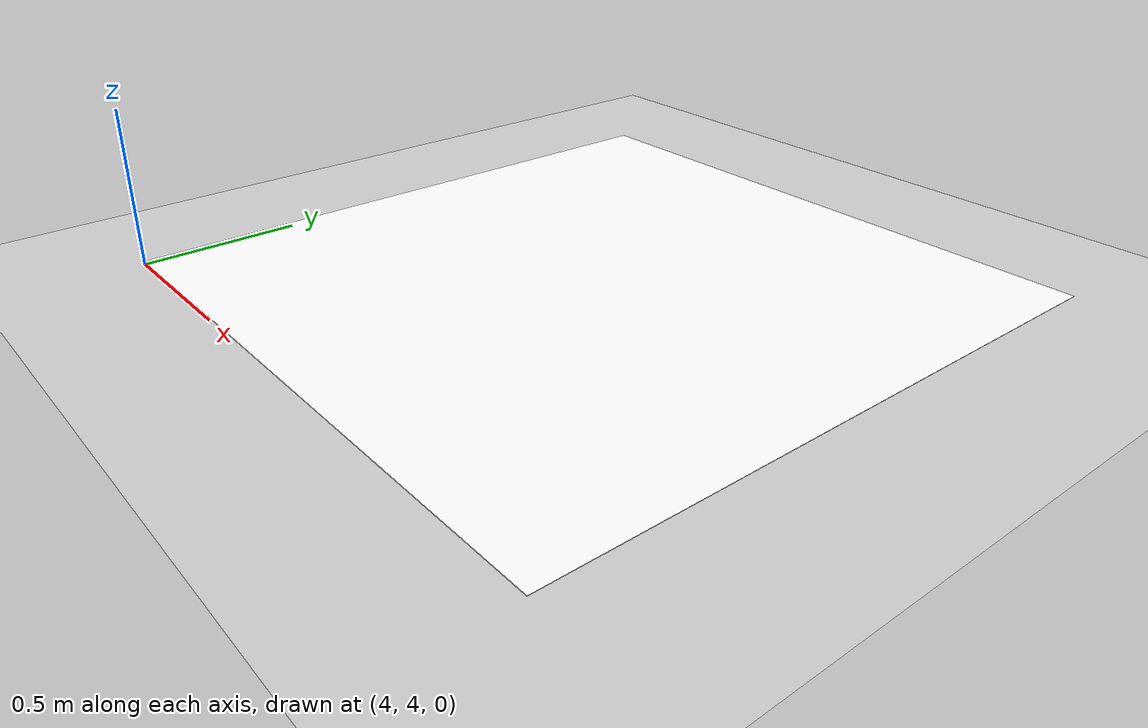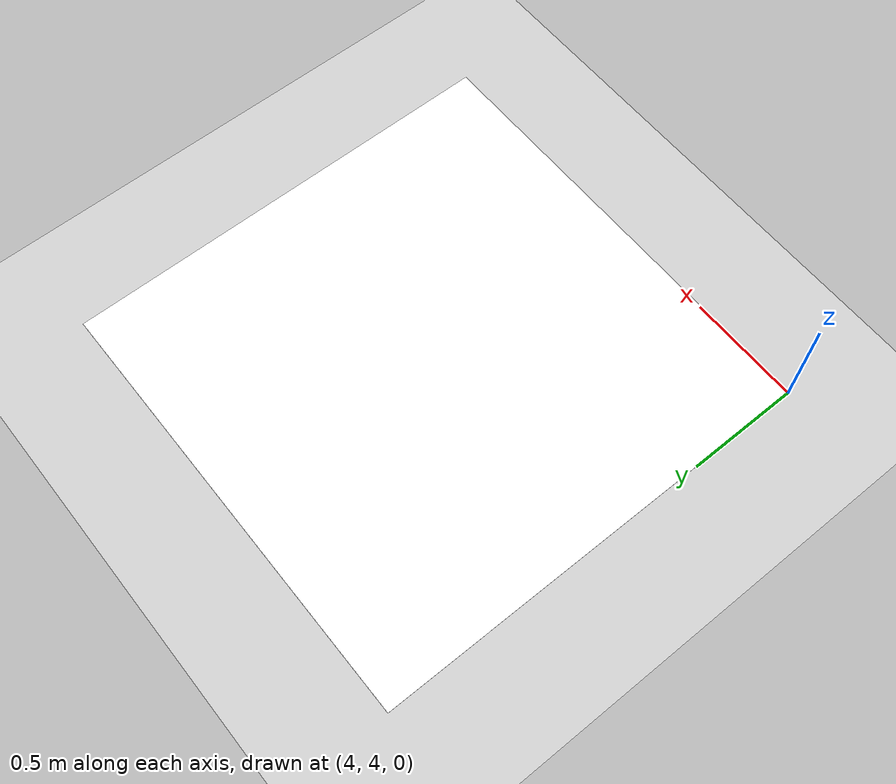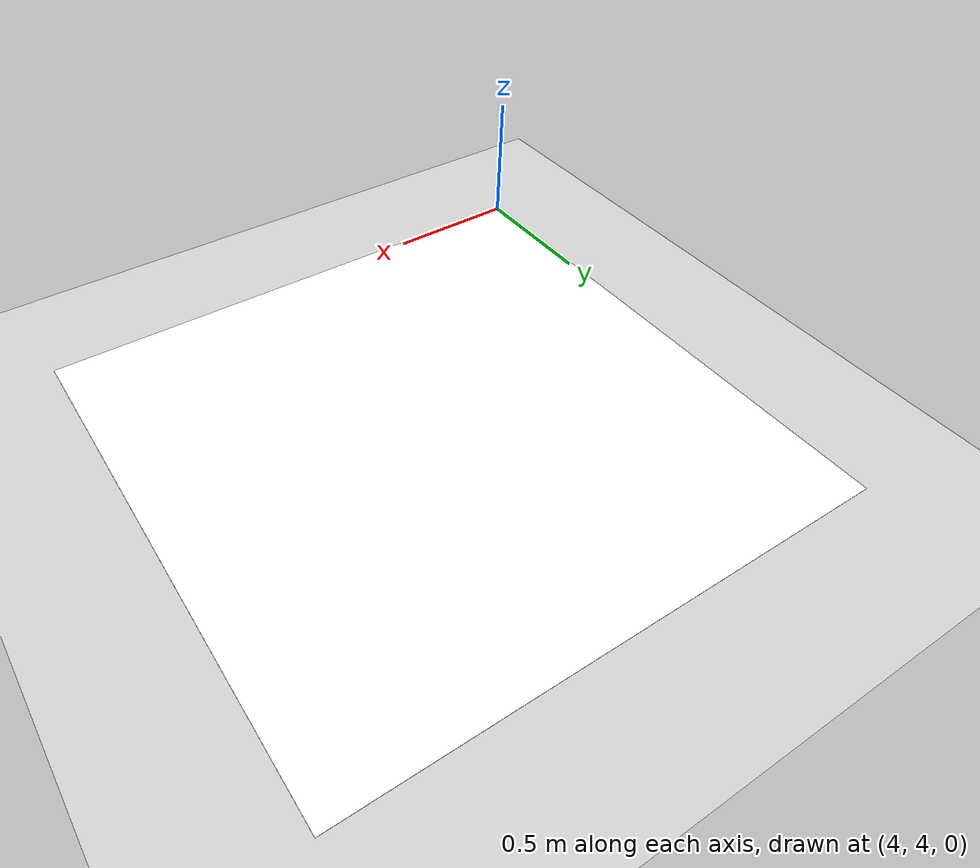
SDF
<?xml version="1.0" encoding="UTF-8"?>
<sdf version="1.9">
  <world name="aruco">
    <physics type="ode">
      <max_step_size>0.004</max_step_size>
      <real_time_factor>1.0</real_time_factor>
      <real_time_update_rate>250</real_time_update_rate>
    </physics>
    <gravity>0 0 -9.8</gravity>
    <scene>
      <grid>false</grid>
      <ambient>0.4 0.4 0.4 1</ambient>
      <background>0.7 0.7 0.7 1</background>
    </scene>
    <model name="ground_plane">
      <static>true</static>
      <link name="link">
        <collision name="collision">
          <geometry><plane><normal>0 0 1</normal><size>1 1</size></plane></geometry>
        </collision>
        <visual name="visual">
          <geometry><plane><normal>0 0 1</normal><size>100 100</size></plane></geometry>
          <material><ambient>0.8 0.8 0.8 1</ambient><diffuse>0.8 0.8 0.8 1</diffuse></material>
        </visual>
      </link>
    </model>
    <light name="sun" type="directional"><pose>0 0 10 0 0 0</pose></light>

    <include>
      <uri>model://arucotag</uri>
      <pose>5.0 5.0 0.01 0 0 0</pose>
<plugin
  filename="gz-sim-linear-velocity-control-system"
  name="gz::sim::systems::LinearVelocityControl">
  <velocity>0.2 0 0</velocity>
</plugin>
    </include>
  </world>
</sdf>

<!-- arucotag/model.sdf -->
<sdf version='1.9'>
  <model name='arucotag'>
    <static>false</static> <link name='base'>
      <visual name='base_visual'>
        <geometry>
          <plane>
            <normal>0 0 1</normal>
            <size>2.0 2.0</size>
          </plane>
        </geometry>
        <material>
          <diffuse>1 1 1 1</diffuse>
          <pbr>
            <metal>
              <albedo_map>arucotag.png</albedo_map>
            </metal>
          </pbr>
        </material>
      </visual>
      <collision name='base_collision'>
        <geometry>
          <plane>
            <normal>0 0 1</normal>
            <size>2.0 2.0</size>
          </plane>
        </geometry>
      </collision>
    </link>
  </model>
</sdf>
